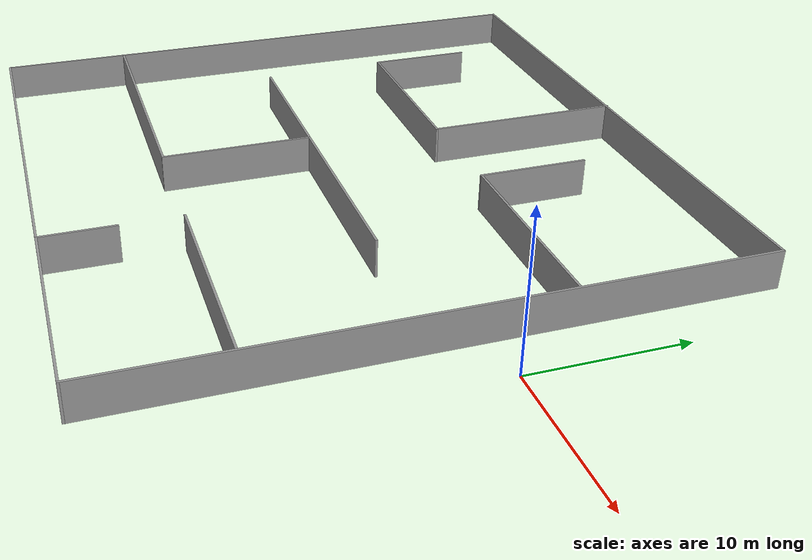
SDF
<?xml version='1.0'?>
<sdf version='1.7'>
  <model name='room'>
    <pose>-21.5565 -2.53803 0 0 -0 0</pose>
    <link name='Wall_0'>
      <collision name='Wall_0_Collision'>
        <geometry>
          <box>
            <size>40 0.15 2.5</size>
          </box>
        </geometry>
        <pose>0 0 1.25 0 -0 0</pose>
      </collision>
      <visual name='Wall_0_Visual'>
        <pose>0 0 1.25 0 -0 0</pose>
        <geometry>
          <box>
            <size>40 0.15 2.5</size>
          </box>
        </geometry>
        <material>
          <script>
            <uri>file://media/materials/scripts/gazebo.material</uri>
            <name>Gazebo/Grey</name>
          </script>
          <ambient>1 1 1 1</ambient>
        </material>
        <meta>
          <layer>0</layer>
        </meta>
      </visual>
      <pose>-1.5565 19.893 0 0 -0 0</pose>
    </link>
    <link name='Wall_11'>
      <collision name='Wall_11_Collision'>
        <geometry>
          <box>
            <size>18.25 0.15 2.5</size>
          </box>
        </geometry>
        <pose>0 0 1.25 0 -0 0</pose>
      </collision>
      <visual name='Wall_11_Visual'>
        <pose>0 0 1.25 0 -0 0</pose>
        <geometry>
          <box>
            <size>18.25 0.15 2.5</size>
          </box>
        </geometry>
        <material>
          <script>
            <uri>file://media/materials/scripts/gazebo.material</uri>
            <name>Gazebo/Grey</name>
          </script>
          <ambient>1 1 1 1</ambient>
        </material>
        <meta>
          <layer>0</layer>
        </meta>
      </visual>
      <pose>-12.3197 -11.3529 0 0 -0 0</pose>
    </link>
    <link name='Wall_12'>
      <collision name='Wall_12_Collision'>
        <geometry>
          <box>
            <size>10 0.15 2.5</size>
          </box>
        </geometry>
        <pose>0 0 1.25 0 -0 0</pose>
      </collision>
      <visual name='Wall_12_Visual'>
        <pose>0 0 1.25 0 -0 0</pose>
        <geometry>
          <box>
            <size>10 0.15 2.5</size>
          </box>
        </geometry>
        <material>
          <script>
            <uri>file://media/materials/scripts/gazebo.material</uri>
            <name>Gazebo/Grey</name>
          </script>
          <ambient>1 1 1 1</ambient>
        </material>
        <meta>
          <layer>0</layer>
        </meta>
      </visual>
      <pose>-3.26965 -6.42793 0 0 -0 1.5708</pose>
    </link>
    <link name='Wall_13'>
      <collision name='Wall_13_Collision'>
        <geometry>
          <box>
            <size>14 0.15 2.5</size>
          </box>
        </geometry>
        <pose>0 0 1.25 0 -0 0</pose>
      </collision>
      <visual name='Wall_13_Visual'>
        <pose>0 0 1.25 0 -0 0</pose>
        <geometry>
          <box>
            <size>14 0.15 2.5</size>
          </box>
        </geometry>
        <material>
          <script>
            <uri>file://media/materials/scripts/gazebo.material</uri>
            <name>Gazebo/Grey</name>
          </script>
          <ambient>1 1 1 1</ambient>
        </material>
        <meta>
          <layer>0</layer>
        </meta>
      </visual>
      <pose>3.65535 -1.50293 0 0 -0 0</pose>
    </link>
    <link name='Wall_17'>
      <collision name='Wall_17_Collision'>
        <geometry>
          <box>
            <size>13.75 0.15 2.5</size>
          </box>
        </geometry>
        <pose>0 0 1.25 0 -0 0</pose>
      </collision>
      <visual name='Wall_17_Visual'>
        <pose>0 0 1.25 0 -0 0</pose>
        <geometry>
          <box>
            <size>13.75 0.15 2.5</size>
          </box>
        </geometry>
        <material>
          <script>
            <uri>file://media/materials/scripts/gazebo.material</uri>
            <name>Gazebo/Grey</name>
          </script>
          <ambient>1 1 1 1</ambient>
        </material>
        <meta>
          <layer>0</layer>
        </meta>
      </visual>
      <pose>11.4188 -11.3529 0 0 -0 0</pose>
    </link>
    <link name='Wall_19'>
      <collision name='Wall_19_Collision'>
        <geometry>
          <box>
            <size>4.75 0.15 2.5</size>
          </box>
        </geometry>
        <pose>0 0 1.25 0 -0 0</pose>
      </collision>
      <visual name='Wall_19_Visual'>
        <pose>0 0 1.25 0 -0 0</pose>
        <geometry>
          <box>
            <size>4.75 0.15 2.5</size>
          </box>
        </geometry>
        <material>
          <script>
            <uri>file://media/materials/scripts/gazebo.material</uri>
            <name>Gazebo/Grey</name>
          </script>
          <ambient>1 1 1 1</ambient>
        </material>
        <meta>
          <layer>0</layer>
        </meta>
      </visual>
      <pose>4.6188 -17.6131 0 0 -0 -1.5708</pose>
    </link>
    <link name='Wall_2'>
      <collision name='Wall_2_Collision'>
        <geometry>
          <box>
            <size>40 0.15 2.5</size>
          </box>
        </geometry>
        <pose>0 0 1.25 0 -0 0</pose>
      </collision>
      <visual name='Wall_2_Visual'>
        <pose>0 0 1.25 0 -0 0</pose>
        <geometry>
          <box>
            <size>40 0.15 2.5</size>
          </box>
        </geometry>
        <material>
          <script>
            <uri>file://media/materials/scripts/gazebo.material</uri>
            <name>Gazebo/Grey</name>
          </script>
          <ambient>1 1 1 1</ambient>
        </material>
        <meta>
          <layer>0</layer>
        </meta>
      </visual>
      <pose>18.3685 -0.03197 0 0 -0 -1.5708</pose>
    </link>
    <link name='Wall_21'>
      <collision name='Wall_21_Collision'>
        <geometry>
          <box>
            <size>10.75 0.15 2.5</size>
          </box>
        </geometry>
        <pose>0 0 1.25 0 -0 0</pose>
      </collision>
      <visual name='Wall_21_Visual'>
        <pose>0 0 1.25 0 -0 0</pose>
        <geometry>
          <box>
            <size>10.75 0.15 2.5</size>
          </box>
        </geometry>
        <material>
          <script>
            <uri>file://media/materials/scripts/gazebo.material</uri>
            <name>Gazebo/Grey</name>
          </script>
          <ambient>1 1 1 1</ambient>
        </material>
        <meta>
          <layer>0</layer>
        </meta>
      </visual>
      <pose>-8.56965 -1.50293 0 0 -0 3.14159</pose>
    </link>
    <link name='Wall_23'>
      <collision name='Wall_23_Collision'>
        <geometry>
          <box>
            <size>13 0.15 2.5</size>
          </box>
        </geometry>
        <pose>0 0 1.25 0 -0 0</pose>
      </collision>
      <visual name='Wall_23_Visual'>
        <pose>0 0 1.25 0 -0 0</pose>
        <geometry>
          <box>
            <size>13 0.15 2.5</size>
          </box>
        </geometry>
        <material>
          <script>
            <uri>file://media/materials/scripts/gazebo.material</uri>
            <name>Gazebo/Grey</name>
          </script>
          <ambient>1 1 1 1</ambient>
        </material>
        <meta>
          <layer>0</layer>
        </meta>
      </visual>
      <pose>-1.94019 13.532 0 0 -0 -1.5708</pose>
    </link>
    <link name='Wall_24'>
      <collision name='Wall_24_Collision'>
        <geometry>
          <box>
            <size>12.5 0.15 2.5</size>
          </box>
        </geometry>
        <pose>0 0 1.25 0 -0 0</pose>
      </collision>
      <visual name='Wall_24_Visual'>
        <pose>0 0 1.25 0 -0 0</pose>
        <geometry>
          <box>
            <size>12.5 0.15 2.5</size>
          </box>
        </geometry>
        <material>
          <script>
            <uri>file://media/materials/scripts/gazebo.material</uri>
            <name>Gazebo/Grey</name>
          </script>
          <ambient>1 1 1 1</ambient>
        </material>
        <meta>
          <layer>0</layer>
        </meta>
      </visual>
      <pose>-8.11519 7.10697 0 0 -0 3.14159</pose>
    </link>
    <link name='Wall_25'>
      <collision name='Wall_25_Collision'>
        <geometry>
          <box>
            <size>7 0.15 2.5</size>
          </box>
        </geometry>
        <pose>0 0 1.25 0 -0 0</pose>
      </collision>
      <visual name='Wall_25_Visual'>
        <pose>0 0 1.25 0 -0 0</pose>
        <geometry>
          <box>
            <size>7 0.15 2.5</size>
          </box>
        </geometry>
        <material>
          <script>
            <uri>file://media/materials/scripts/gazebo.material</uri>
            <name>Gazebo/Grey</name>
          </script>
          <ambient>1 1 1 1</ambient>
        </material>
        <meta>
          <layer>0</layer>
        </meta>
      </visual>
      <pose>-14.2902 10.532 0 0 -0 1.5708</pose>
    </link>
    <link name='Wall_27'>
      <collision name='Wall_27_Collision'>
        <geometry>
          <box>
            <size>13.25 0.15 2.5</size>
          </box>
        </geometry>
        <pose>0 0 1.25 0 -0 0</pose>
      </collision>
      <visual name='Wall_27_Visual'>
        <pose>0 0 1.25 0 -0 0</pose>
        <geometry>
          <box>
            <size>13.25 0.15 2.5</size>
          </box>
        </geometry>
        <material>
          <script>
            <uri>file://media/materials/scripts/gazebo.material</uri>
            <name>Gazebo/Grey</name>
          </script>
          <ambient>1 1 1 1</ambient>
        </material>
        <meta>
          <layer>0</layer>
        </meta>
      </visual>
      <pose>11.6818 7.33401 0 0 -0 3.14159</pose>
    </link>
    <link name='Wall_30'>
      <collision name='Wall_30_Collision'>
        <geometry>
          <box>
            <size>7.25 0.15 2.5</size>
          </box>
        </geometry>
        <pose>0 0 1.25 0 -0 0</pose>
      </collision>
      <visual name='Wall_30_Visual'>
        <pose>0 0 1.25 0 -0 0</pose>
        <geometry>
          <box>
            <size>7.25 0.15 2.5</size>
          </box>
        </geometry>
        <material>
          <script>
            <uri>file://media/materials/scripts/gazebo.material</uri>
            <name>Gazebo/Grey</name>
          </script>
          <ambient>1 1 1 1</ambient>
        </material>
        <meta>
          <layer>0</layer>
        </meta>
      </visual>
      <pose>5.1318 10.884 0 0 -0 1.5708</pose>
    </link>
    <link name='Wall_6'>
      <collision name='Wall_6_Collision'>
        <geometry>
          <box>
            <size>40 0.15 2.5</size>
          </box>
        </geometry>
        <pose>0 0 1.25 0 -0 0</pose>
      </collision>
      <visual name='Wall_6_Visual'>
        <pose>0 0 1.25 0 -0 0</pose>
        <geometry>
          <box>
            <size>40 0.15 2.5</size>
          </box>
        </geometry>
        <material>
          <script>
            <uri>file://media/materials/scripts/gazebo.material</uri>
            <name>Gazebo/Grey</name>
          </script>
          <ambient>1 1 1 1</ambient>
        </material>
        <meta>
          <layer>0</layer>
        </meta>
      </visual>
      <pose>-1.5565 -19.957 0 0 -0 3.14159</pose>
    </link>
    <link name='Wall_8'>
      <collision name='Wall_8_Collision'>
        <geometry>
          <box>
            <size>40 0.15 2.5</size>
          </box>
        </geometry>
        <pose>0 0 1.25 0 -0 0</pose>
      </collision>
      <visual name='Wall_8_Visual'>
        <pose>0 0 1.25 0 -0 0</pose>
        <geometry>
          <box>
            <size>40 0.15 2.5</size>
          </box>
        </geometry>
        <material>
          <script>
            <uri>file://media/materials/scripts/gazebo.material</uri>
            <name>Gazebo/Grey</name>
          </script>
          <ambient>1 1 1 1</ambient>
        </material>
        <meta>
          <layer>0</layer>
        </meta>
      </visual>
      <pose>-21.4815 -0.03197 0 0 -0 -1.5708</pose>
    </link>
    <static>1</static>
  </model>
</sdf>
